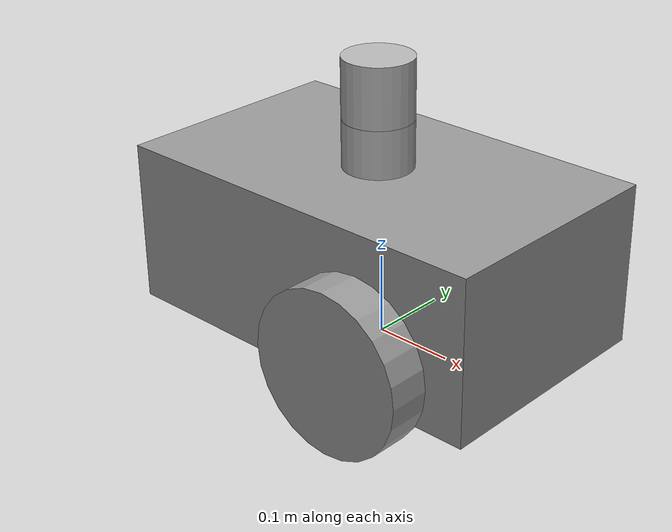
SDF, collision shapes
<?xml version='1.0'?>
<sdf version='1.6'>
  <model name='car_ltme'>
    <link name='link_0'>
      <inertial>
        <mass>1</mass>
        <inertia>
          <ixx>0.166667</ixx>
          <ixy>0</ixy>
          <ixz>0</ixz>
          <iyy>0.166667</iyy>
          <iyz>0</iyz>
          <izz>0.166667</izz>
        </inertia>
        <pose frame=''>0 0 0 0 -0 0</pose>
      </inertial>
      <pose frame=''>-0.002851 -0.002238 0.11875 0 -0 0</pose>
      <gravity>1</gravity>
      <self_collide>0</self_collide>
      <kinematic>0</kinematic>
      <enable_wind>0</enable_wind>
      <visual name='visual'>
        <pose frame=''>0 0 0 0 -0 0</pose>
        <geometry>
          <box>
            <size>0.5 0.3 0.2</size>
          </box>
        </geometry>
        <material>
          <lighting>1</lighting>
          <script>
            <uri>file://media/materials/scripts/gazebo.material</uri>
            <name>Gazebo/Grey</name>
          </script>
          <shader type='vertex'>
            <normal_map>__default__</normal_map>
          </shader>
          <ambient>0.3 0.3 0.3 1</ambient>
          <diffuse>0.7 0.7 0.7 1</diffuse>
          <specular>0.01 0.01 0.01 1</specular>
          <emissive>0 0 0 1</emissive>
        </material>
        <transparency>0</transparency>
        <cast_shadows>1</cast_shadows>
      </visual>
      <collision name='collision'>
        <laser_retro>0</laser_retro>
        <max_contacts>10</max_contacts>
        <pose frame=''>0 0 0 0 -0 0</pose>
        <geometry>
          <box>
            <size>0.5 0.3 0.2</size>
          </box>
        </geometry>
        <surface>
          <friction>
            <ode>
              <mu>1</mu>
              <mu2>1</mu2>
              <fdir1>0 0 0</fdir1>
              <slip1>0</slip1>
              <slip2>0</slip2>
            </ode>
            <torsional>
              <coefficient>1</coefficient>
              <patch_radius>0</patch_radius>
              <surface_radius>0</surface_radius>
              <use_patch_radius>1</use_patch_radius>
              <ode>
                <slip>0</slip>
              </ode>
            </torsional>
          </friction>
          <bounce>
            <restitution_coefficient>0</restitution_coefficient>
            <threshold>1e+06</threshold>
          </bounce>
          <contact>
            <collide_without_contact>0</collide_without_contact>
            <collide_without_contact_bitmask>1</collide_without_contact_bitmask>
            <collide_bitmask>1</collide_bitmask>
            <ode>
              <soft_cfm>0</soft_cfm>
              <soft_erp>0.2</soft_erp>
              <kp>1e+13</kp>
              <kd>1</kd>
              <max_vel>0.01</max_vel>
              <min_depth>0</min_depth>
            </ode>
            <bullet>
              <split_impulse>1</split_impulse>
              <split_impulse_penetration_threshold>-0.01</split_impulse_penetration_threshold>
              <soft_cfm>0</soft_cfm>
              <soft_erp>0.2</soft_erp>
              <kp>1e+13</kp>
              <kd>1</kd>
            </bullet>
          </contact>
        </surface>
      </collision>
    </link>
    <link name='link_1'>
      <inertial>
        <mass>1</mass>
        <inertia>
          <ixx>0.145833</ixx>
          <ixy>0</ixy>
          <ixz>0</ixz>
          <iyy>0.145833</iyy>
          <iyz>0</iyz>
          <izz>0.125</izz>
        </inertia>
        <pose frame=''>0 0 0 0 -0 0</pose>
      </inertial>
      <pose frame=''>0.098553 -0.177461 0.06875 1.5707 -0 0</pose>
      <gravity>1</gravity>
      <self_collide>0</self_collide>
      <kinematic>0</kinematic>
      <enable_wind>0</enable_wind>
      <visual name='visual'>
        <pose frame=''>0 0 0 0 -0 0</pose>
        <geometry>
          <cylinder>
            <radius>0.1</radius>
            <length>0.05</length>
          </cylinder>
        </geometry>
        <material>
          <lighting>1</lighting>
          <script>
            <uri>file://media/materials/scripts/gazebo.material</uri>
            <name>Gazebo/Grey</name>
          </script>
          <shader type='vertex'>
            <normal_map>__default__</normal_map>
          </shader>
          <ambient>0.3 0.3 0.3 1</ambient>
          <diffuse>0.7 0.7 0.7 1</diffuse>
          <specular>0.01 0.01 0.01 1</specular>
          <emissive>0 0 0 1</emissive>
        </material>
        <transparency>0</transparency>
        <cast_shadows>1</cast_shadows>
      </visual>
      <collision name='collision'>
        <laser_retro>0</laser_retro>
        <max_contacts>10</max_contacts>
        <pose frame=''>0 0 0 0 -0 0</pose>
        <geometry>
          <cylinder>
            <radius>0.1</radius>
            <length>0.05</length>
          </cylinder>
        </geometry>
        <surface>
          <friction>
            <ode>
              <mu>1</mu>
              <mu2>1</mu2>
              <fdir1>0 0 0</fdir1>
              <slip1>0</slip1>
              <slip2>0</slip2>
            </ode>
            <torsional>
              <coefficient>1</coefficient>
              <patch_radius>0</patch_radius>
              <surface_radius>0</surface_radius>
              <use_patch_radius>1</use_patch_radius>
              <ode>
                <slip>0</slip>
              </ode>
            </torsional>
          </friction>
          <bounce>
            <restitution_coefficient>0</restitution_coefficient>
            <threshold>1e+06</threshold>
          </bounce>
          <contact>
            <collide_without_contact>0</collide_without_contact>
            <collide_without_contact_bitmask>1</collide_without_contact_bitmask>
            <collide_bitmask>1</collide_bitmask>
            <ode>
              <soft_cfm>0</soft_cfm>
              <soft_erp>0.2</soft_erp>
              <kp>1e+13</kp>
              <kd>1</kd>
              <max_vel>0.01</max_vel>
              <min_depth>0</min_depth>
            </ode>
            <bullet>
              <split_impulse>1</split_impulse>
              <split_impulse_penetration_threshold>-0.01</split_impulse_penetration_threshold>
              <soft_cfm>0</soft_cfm>
              <soft_erp>0.2</soft_erp>
              <kp>1e+13</kp>
              <kd>1</kd>
            </bullet>
          </contact>
        </surface>
      </collision>
    </link>
    <link name='link_1_clone'>
      <inertial>
        <mass>1</mass>
        <inertia>
          <ixx>0.145833</ixx>
          <ixy>0</ixy>
          <ixz>0</ixz>
          <iyy>0.145833</iyy>
          <iyz>0</iyz>
          <izz>0.125</izz>
        </inertia>
        <pose frame=''>0 0 0 0 -0 0</pose>
      </inertial>
      <pose frame=''>0.098553 0.172562 0.06875 1.5707 -0 0</pose>
      <gravity>1</gravity>
      <self_collide>0</self_collide>
      <kinematic>0</kinematic>
      <enable_wind>0</enable_wind>
      <visual name='visual'>
        <pose frame=''>0 0 0 0 -0 0</pose>
        <geometry>
          <cylinder>
            <radius>0.1</radius>
            <length>0.05</length>
          </cylinder>
        </geometry>
        <material>
          <lighting>1</lighting>
          <script>
            <uri>file://media/materials/scripts/gazebo.material</uri>
            <name>Gazebo/Grey</name>
          </script>
          <shader type='vertex'>
            <normal_map>__default__</normal_map>
          </shader>
          <ambient>0.3 0.3 0.3 1</ambient>
          <diffuse>0.7 0.7 0.7 1</diffuse>
          <specular>0.01 0.01 0.01 1</specular>
          <emissive>0 0 0 1</emissive>
        </material>
        <transparency>0</transparency>
        <cast_shadows>1</cast_shadows>
      </visual>
      <collision name='collision'>
        <laser_retro>0</laser_retro>
        <max_contacts>10</max_contacts>
        <pose frame=''>0 0 0 0 -0 0</pose>
        <geometry>
          <cylinder>
            <radius>0.1</radius>
            <length>0.05</length>
          </cylinder>
        </geometry>
        <surface>
          <friction>
            <ode>
              <mu>1</mu>
              <mu2>1</mu2>
              <fdir1>0 0 0</fdir1>
              <slip1>0</slip1>
              <slip2>0</slip2>
            </ode>
            <torsional>
              <coefficient>1</coefficient>
              <patch_radius>0</patch_radius>
              <surface_radius>0</surface_radius>
              <use_patch_radius>1</use_patch_radius>
              <ode>
                <slip>0</slip>
              </ode>
            </torsional>
          </friction>
          <bounce>
            <restitution_coefficient>0</restitution_coefficient>
            <threshold>1e+06</threshold>
          </bounce>
          <contact>
            <collide_without_contact>0</collide_without_contact>
            <collide_without_contact_bitmask>1</collide_without_contact_bitmask>
            <collide_bitmask>1</collide_bitmask>
            <ode>
              <soft_cfm>0</soft_cfm>
              <soft_erp>0.2</soft_erp>
              <kp>1e+13</kp>
              <kd>1</kd>
              <max_vel>0.01</max_vel>
              <min_depth>0</min_depth>
            </ode>
            <bullet>
              <split_impulse>1</split_impulse>
              <split_impulse_penetration_threshold>-0.01</split_impulse_penetration_threshold>
              <soft_cfm>0</soft_cfm>
              <soft_erp>0.2</soft_erp>
              <kp>1e+13</kp>
              <kd>1</kd>
            </bullet>
          </contact>
        </surface>
      </collision>
    </link>
    <link name='link_2'>
      <inertial>
        <mass>1</mass>
        <inertia>
          <ixx>0.1</ixx>
          <ixy>0</ixy>
          <ixz>0</ixz>
          <iyy>0.1</iyy>
          <iyz>0</iyz>
          <izz>0.1</izz>
        </inertia>
        <pose frame=''>0 0 0 0 -0 0</pose>
      </inertial>
      <pose frame=''>-0.228851 -0.060237 -0.00625 0 -0 0</pose>
      <gravity>1</gravity>
      <self_collide>0</self_collide>
      <kinematic>0</kinematic>
      <enable_wind>0</enable_wind>
      <visual name='visual'>
        <pose frame=''>0 0 0 0 -0 0</pose>
        <geometry>
          <sphere>
            <radius>0.024</radius>
          </sphere>
        </geometry>
        <material>
          <lighting>1</lighting>
          <script>
            <uri>file://media/materials/scripts/gazebo.material</uri>
            <name>Gazebo/Grey</name>
          </script>
          <shader type='vertex'>
            <normal_map>__default__</normal_map>
          </shader>
          <ambient>0.3 0.3 0.3 1</ambient>
          <diffuse>0.7 0.7 0.7 1</diffuse>
          <specular>0.01 0.01 0.01 1</specular>
          <emissive>0 0 0 1</emissive>
        </material>
        <transparency>0</transparency>
        <cast_shadows>1</cast_shadows>
      </visual>
      <collision name='collision'>
        <laser_retro>0</laser_retro>
        <max_contacts>10</max_contacts>
        <pose frame=''>0 0 0 0 -0 0</pose>
        <geometry>
          <sphere>
            <radius>0.024</radius>
          </sphere>
        </geometry>
        <surface>
          <friction>
            <ode>
              <mu>1</mu>
              <mu2>1</mu2>
              <fdir1>0 0 0</fdir1>
              <slip1>0</slip1>
              <slip2>0</slip2>
            </ode>
            <torsional>
              <coefficient>1</coefficient>
              <patch_radius>0</patch_radius>
              <surface_radius>0</surface_radius>
              <use_patch_radius>1</use_patch_radius>
              <ode>
                <slip>0</slip>
              </ode>
            </torsional>
          </friction>
          <bounce>
            <restitution_coefficient>0</restitution_coefficient>
            <threshold>1e+06</threshold>
          </bounce>
          <contact>
            <collide_without_contact>0</collide_without_contact>
            <collide_without_contact_bitmask>1</collide_without_contact_bitmask>
            <collide_bitmask>1</collide_bitmask>
            <ode>
              <soft_cfm>0</soft_cfm>
              <soft_erp>0.2</soft_erp>
              <kp>1e+13</kp>
              <kd>1</kd>
              <max_vel>0.01</max_vel>
              <min_depth>0</min_depth>
            </ode>
            <bullet>
              <split_impulse>1</split_impulse>
              <split_impulse_penetration_threshold>-0.01</split_impulse_penetration_threshold>
              <soft_cfm>0</soft_cfm>
              <soft_erp>0.2</soft_erp>
              <kp>1e+13</kp>
              <kd>1</kd>
            </bullet>
          </contact>
        </surface>
      </collision>
    </link>
    <model name='velodyne'>
      <link name='base'>
        <pose frame=''>0 0 0.029335 0 -0 0</pose>
        <inertial>
          <mass>1.2</mass>
          <inertia>
            <ixx>0.00108747</ixx>
            <iyy>0.00108747</iyy>
            <izz>0.00109244</izz>
            <ixy>0</ixy>
            <ixz>0</ixz>
            <iyz>0</iyz>
          </inertia>
        </inertial>
        <collision name='base_collision'>
          <geometry>
            <cylinder>
              <radius>0.04267</radius>
              <length>0.05867</length>
            </cylinder>
          </geometry>
        </collision>
        <visual name='base_visual'>
          <pose frame=''>0 0 -0.029335 0 -0 0</pose>
          <geometry>
            <mesh>
              <uri>model://velodyne_hdl32/meshes/velodyne_base.dae</uri>
            </mesh>
          </geometry>
        </visual>
      </link>
      <link name='top'>
        <pose frame=''>0 0 0.095455 0 -0 0</pose>
        <inertial>
          <mass>0.1</mass>
          <inertia>
            <ixx>9.0623e-05</ixx>
            <iyy>9.0623e-05</iyy>
            <izz>9.1036e-05</izz>
            <ixy>0</ixy>
            <ixz>0</ixz>
            <iyz>0</iyz>
          </inertia>
        </inertial>
        <collision name='top_collision'>
          <geometry>
            <cylinder>
              <radius>0.04267</radius>
              <length>0.07357</length>
            </cylinder>
          </geometry>
        </collision>
        <visual name='top_visual'>
          <pose frame=''>0 0 -0.037679 0 -0 1.5707</pose>
          <geometry>
            <mesh>
              <uri>model://velodyne_hdl32/meshes/velodyne_top.dae</uri>
            </mesh>
          </geometry>
        </visual>
        <sensor name='sensor' type='ray'>
          <pose frame=''>0 0 -0.004645 1.5707 -0 0</pose>
          <visualize>1</visualize>
          <update_rate>30</update_rate>
          <ray>
            <noise>
              <type>gaussian</type>
              <mean>0</mean>
              <stddev>0.1</stddev>
            </noise>
            <scan>
              <horizontal>
                <samples>32</samples>
                <resolution>1</resolution>
                <min_angle>-0.535292</min_angle>
                <max_angle>0.186227</max_angle>
              </horizontal>
            </scan>
            <range>
              <min>0.1</min>
              <max>70</max>
              <resolution>0.02</resolution>
            </range>
          </ray>
        </sensor>
      </link>
      <joint name='joint' type='revolute'>
        <pose frame=''>0 0 -0.036785 0 -0 0</pose>
        <parent>base</parent>
        <child>top</child>
        <axis>
          <xyz>0 0 1</xyz>
          <limit>
            <lower>-1e+16</lower>
            <upper>1e+16</upper>
          </limit>
          <use_parent_model_frame>0</use_parent_model_frame>
        </axis>
      </joint>
      <pose frame=''>-0.001417 -0.004604 0.21875 0 0 -3.10055</pose>
    </model>
    <joint name='link_0_JOINT_0' type='revolute'>
      <parent>link_0</parent>
      <child>link_1</child>
      <pose frame=''>0 0 0 0 -0 0</pose>
      <axis>
        <xyz>0 0 1</xyz>
        <use_parent_model_frame>0</use_parent_model_frame>
        <limit>
          <lower>-1.79769e+308</lower>
          <upper>1.79769e+308</upper>
          <effort>-1</effort>
          <velocity>-1</velocity>
        </limit>
        <dynamics>
          <spring_reference>0</spring_reference>
          <spring_stiffness>0</spring_stiffness>
          <damping>0</damping>
        </dynamics>
      </axis>
      <physics>
        <ode>
          <limit>
            <cfm>0</cfm>
            <erp>0.2</erp>
          </limit>
          <suspension>
            <cfm>0</cfm>
            <erp>0.2</erp>
          </suspension>
        </ode>
      </physics>
    </joint>
    <joint name='link_0_JOINT_1' type='revolute'>
      <parent>link_0</parent>
      <child>link_1_clone</child>
      <pose frame=''>0 0 0 0 -0 0</pose>
      <axis>
        <xyz>0 0 1</xyz>
        <use_parent_model_frame>0</use_parent_model_frame>
        <limit>
          <lower>-1.79769e+308</lower>
          <upper>1.79769e+308</upper>
          <effort>-1</effort>
          <velocity>-1</velocity>
        </limit>
        <dynamics>
          <spring_reference>0</spring_reference>
          <spring_stiffness>0</spring_stiffness>
          <damping>0</damping>
        </dynamics>
      </axis>
      <physics>
        <ode>
          <limit>
            <cfm>0</cfm>
            <erp>0.2</erp>
          </limit>
          <suspension>
            <cfm>0</cfm>
            <erp>0.2</erp>
          </suspension>
        </ode>
      </physics>
    </joint>
    <joint name='link_0_JOINT_2' type='ball'>
      <parent>link_0</parent>
      <child>link_2</child>
      <pose frame=''>0 0 0 0 -0 0</pose>
      <physics>
        <ode>
          <limit>
            <cfm>0</cfm>
            <erp>0.2</erp>
          </limit>
          <suspension>
            <cfm>0</cfm>
            <erp>0.2</erp>
          </suspension>
        </ode>
      </physics>
    </joint>
    <static>0</static>
    <allow_auto_disable>1</allow_auto_disable>
  </model>
</sdf>
